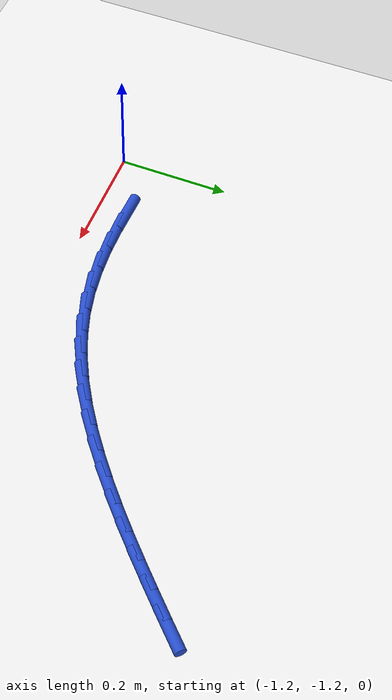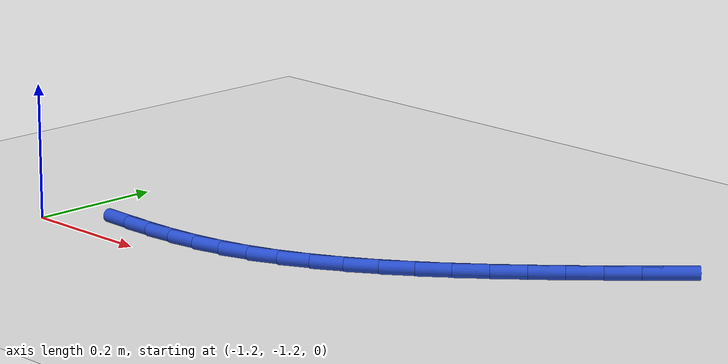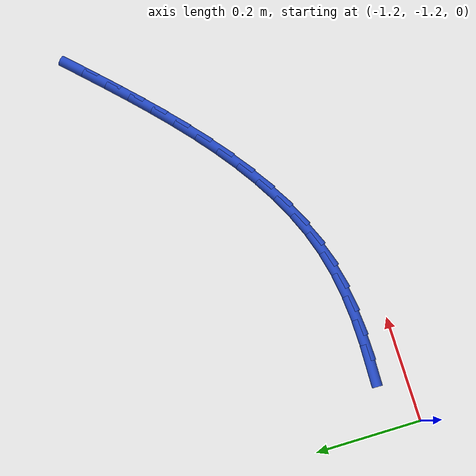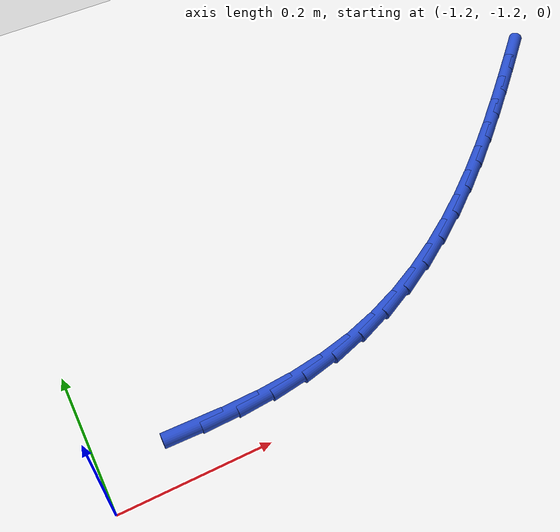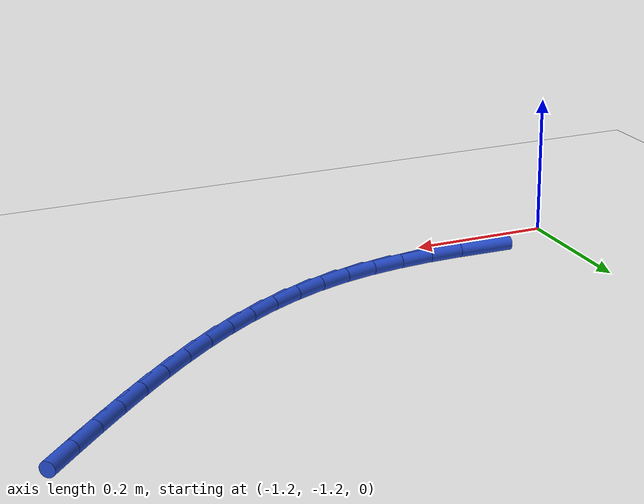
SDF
<sdf version="1.6">
 <world name="default">
  <model name="ground_plane">
   <static>1</static>
   <link name="link">
    <collision name="collision">
     <geometry><plane><normal>0 0 1</normal><size>100 100</size></plane></geometry>
     <surface><friction><ode><mu>100</mu><mu2>50</mu2></ode></friction></surface>
    </collision>
    <visual name="visual">
     <cast_shadows>0</cast_shadows>
     <geometry><plane><normal>0 0 1</normal><size>100 100</size></plane></geometry>
     <material>
      <script><uri>file://media/materials/scripts/gazebo.material</uri><name>Gazebo/WhiteGlow</name></script>
     </material>
    </visual>
   </link>
  </model>
  <model name="line">
   <link name="link_105">
    <pose>-1.078228623438483 -1.1433610569845103 0.01 0 1.57 -0.023815697897498808</pose>
    <collision name="collision">
     <geometry><cylinder><radius>0.01</radius><length>0.08</length></cylinder></geometry>
    </collision>
    <visual name="visual">
     <material>
      <script><name>Gazebo/Blue</name><uri>file://media/materials/scripts/gazebo.material</uri></script>
     </material>
     <geometry><cylinder><radius>0.01</radius><length>0.08</length></cylinder></geometry>
    </visual>
   </link>
   <link name="link_106">
    <pose>-1.0297414472252078 -1.1445160312956835 0.01 0 1.57 0.024264967963079167</pose>
    <collision name="collision">
     <geometry><cylinder><radius>0.01</radius><length>0.08</length></cylinder></geometry>
    </collision>
    <visual name="visual">
     <material>
      <script><name>Gazebo/Blue</name><uri>file://media/materials/scripts/gazebo.material</uri></script>
     </material>
     <geometry><cylinder><radius>0.01</radius><length>0.08</length></cylinder></geometry>
    </visual>
   </link>
   <link name="link_107">
    <pose>-0.9821533269844992 -1.1433610803997207 0.01 0 1.57 0.08319295463774931</pose>
    <collision name="collision">
     <geometry><cylinder><radius>0.01</radius><length>0.08</length></cylinder></geometry>
    </collision>
    <visual name="visual">
     <material>
      <script><name>Gazebo/Blue</name><uri>file://media/materials/scripts/gazebo.material</uri></script>
     </material>
     <geometry><cylinder><radius>0.01</radius><length>0.08</length></cylinder></geometry>
    </visual>
   </link>
   <link name="link_108">
    <pose>-0.9354800299460815 -1.1394692081337472 0.01 0 1.57 0.15304332848458832</pose>
    <collision name="collision">
     <geometry><cylinder><radius>0.01</radius><length>0.08</length></cylinder></geometry>
    </collision>
    <visual name="visual">
     <material>
      <script><name>Gazebo/Blue</name><uri>file://media/materials/scripts/gazebo.material</uri></script>
     </material>
     <geometry><cylinder><radius>0.01</radius><length>0.08</length></cylinder></geometry>
    </visual>
   </link>
   <link name="link_109">
    <pose>-0.8897373233396774 -1.132413418334886 0.01 0 1.57 0.2333397716903596</pose>
    <collision name="collision">
     <geometry><cylinder><radius>0.01</radius><length>0.08</length></cylinder></geometry>
    </collision>
    <visual name="visual">
     <material>
      <script><name>Gazebo/Blue</name><uri>file://media/materials/scripts/gazebo.material</uri></script>
     </material>
     <geometry><cylinder><radius>0.01</radius><length>0.08</length></cylinder></geometry>
    </visual>
   </link>
   <link name="link_110">
    <pose>-0.8449409743950125 -1.1217667148402621 0.01 0 1.57 0.32134176029895645</pose>
    <collision name="collision">
     <geometry><cylinder><radius>0.01</radius><length>0.08</length></cylinder></geometry>
    </collision>
    <visual name="visual">
     <material>
      <script><name>Gazebo/Blue</name><uri>file://media/materials/scripts/gazebo.material</uri></script>
     </material>
     <geometry><cylinder><radius>0.01</radius><length>0.08</length></cylinder></geometry>
    </visual>
   </link>
   <link name="link_111">
    <pose>-0.801101372415932 -1.1071734241025848 0.01 0 1.57 0.40494988011609956</pose>
    <collision name="collision">
     <geometry><cylinder><radius>0.01</radius><length>0.08</length></cylinder></geometry>
    </collision>
    <visual name="visual">
     <material>
      <script><name>Gazebo/Blue</name><uri>file://media/materials/scripts/gazebo.material</uri></script>
     </material>
     <geometry><cylinder><radius>0.01</radius><length>0.08</length></cylinder></geometry>
    </visual>
   </link>
   <link name="link_112">
    <pose>-0.7581910205650433 -1.088780322543014 0.01 0 1.57 0.4790940734579852</pose>
    <collision name="collision">
     <geometry><cylinder><radius>0.01</radius><length>0.08</length></cylinder></geometry>
    </collision>
    <visual name="visual">
     <material>
      <script><name>Gazebo/Blue</name><uri>file://media/materials/scripts/gazebo.material</uri></script>
     </material>
     <geometry><cylinder><radius>0.01</radius><length>0.08</length></cylinder></geometry>
    </visual>
   </link>
   <link name="link_113">
    <pose>-0.7161661428199229 -1.0669500828375709 0.01 0 1.57 0.5438746938148845</pose>
    <collision name="collision">
     <geometry><cylinder><radius>0.01</radius><length>0.08</length></cylinder></geometry>
    </collision>
    <visual name="visual">
     <material>
      <script><name>Gazebo/Blue</name><uri>file://media/materials/scripts/gazebo.material</uri></script>
     </material>
     <geometry><cylinder><radius>0.01</radius><length>0.08</length></cylinder></geometry>
    </visual>
   </link>
   <link name="link_114">
    <pose>-0.674982900258891 -1.0420462118388216 0.01 0 1.57 0.5997440011481578</pose>
    <collision name="collision">
     <geometry><cylinder><radius>0.01</radius><length>0.08</length></cylinder></geometry>
    </collision>
    <visual name="visual">
     <material>
      <script><name>Gazebo/Blue</name><uri>file://media/materials/scripts/gazebo.material</uri></script>
     </material>
     <geometry><cylinder><radius>0.01</radius><length>0.08</length></cylinder></geometry>
    </visual>
   </link>
   <link name="link_115">
    <pose>-0.6345974539602666 -1.014432216399331 0.01 0 1.57 0.6473173361998076</pose>
    <collision name="collision">
     <geometry><cylinder><radius>0.01</radius><length>0.08</length></cylinder></geometry>
    </collision>
    <visual name="visual">
     <material>
      <script><name>Gazebo/Blue</name><uri>file://media/materials/scripts/gazebo.material</uri></script>
     </material>
     <geometry><cylinder><radius>0.01</radius><length>0.08</length></cylinder></geometry>
    </visual>
   </link>
   <link name="link_116">
    <pose>-0.5949659650023683 -0.9844716033716635 0.01 0 1.57 0.6872507269703042</pose>
    <collision name="collision">
     <geometry><cylinder><radius>0.01</radius><length>0.08</length></cylinder></geometry>
    </collision>
    <visual name="visual">
     <material>
      <script><name>Gazebo/Blue</name><uri>file://media/materials/scripts/gazebo.material</uri></script>
     </material>
     <geometry><cylinder><radius>0.01</radius><length>0.08</length></cylinder></geometry>
    </visual>
   </link>
   <link name="link_117">
    <pose>-0.5560445944635147 -0.9525278796083834 0.01 0 1.57 0.7201627255880154</pose>
    <collision name="collision">
     <geometry><cylinder><radius>0.01</radius><length>0.08</length></cylinder></geometry>
    </collision>
    <visual name="visual">
     <material>
      <script><name>Gazebo/Blue</name><uri>file://media/materials/scripts/gazebo.material</uri></script>
     </material>
     <geometry><cylinder><radius>0.01</radius><length>0.08</length></cylinder></geometry>
    </visual>
   </link>
   <link name="link_118">
    <pose>-0.5177895034220262 -0.9189645519620571 0.01 0 1.57 0.7465888780643658</pose>
    <collision name="collision">
     <geometry><cylinder><radius>0.01</radius><length>0.08</length></cylinder></geometry>
    </collision>
    <visual name="visual">
     <material>
      <script><name>Gazebo/Blue</name><uri>file://media/materials/scripts/gazebo.material</uri></script>
     </material>
     <geometry><cylinder><radius>0.01</radius><length>0.08</length></cylinder></geometry>
    </visual>
   </link>
   <link name="link_119">
    <pose>-0.4801568529562211 -0.8841451272852487 0.01 0 1.57 0.7669571243105798</pose>
    <collision name="collision">
     <geometry><cylinder><radius>0.01</radius><length>0.08</length></cylinder></geometry>
    </collision>
    <visual name="visual">
     <material>
      <script><name>Gazebo/Blue</name><uri>file://media/materials/scripts/gazebo.material</uri></script>
     </material>
     <geometry><cylinder><radius>0.01</radius><length>0.08</length></cylinder></geometry>
    </visual>
   </link>
   <link name="link_120">
    <pose>-0.4431028041444186 -0.8484331124305233 0.01 0 1.57 0.7815748391155116</pose>
    <collision name="collision">
     <geometry><cylinder><radius>0.01</radius><length>0.08</length></cylinder></geometry>
    </collision>
    <visual name="visual">
     <material>
      <script><name>Gazebo/Blue</name><uri>file://media/materials/scripts/gazebo.material</uri></script>
     </material>
     <geometry><cylinder><radius>0.01</radius><length>0.08</length></cylinder></geometry>
    </visual>
   </link>
   <link name="link_121">
    <pose>-0.4065835180649377 -0.8121920142504455 0.01 0 1.57 0.7906296344488717</pose>
    <collision name="collision">
     <geometry><cylinder><radius>0.01</radius><length>0.08</length></cylinder></geometry>
    </collision>
    <visual name="visual">
     <material>
      <script><name>Gazebo/Blue</name><uri>file://media/materials/scripts/gazebo.material</uri></script>
     </material>
     <geometry><cylinder><radius>0.01</radius><length>0.08</length></cylinder></geometry>
    </visual>
   </link>
   <link name="link_122">
    <pose>-0.37055537065906186 -0.7757849205204205 0.01 0 1.57 0.7971692719083647</pose>
    <collision name="collision">
     <geometry><cylinder><radius>0.01</radius><length>0.08</length></cylinder></geometry>
    </collision>
    <visual name="visual">
     <material>
      <script><name>Gazebo/Blue</name><uri>file://media/materials/scripts/gazebo.material</uri></script>
     </material>
     <geometry><cylinder><radius>0.01</radius><length>0.08</length></cylinder></geometry>
    </visual>
   </link>
  </model>
 </world>
</sdf>
